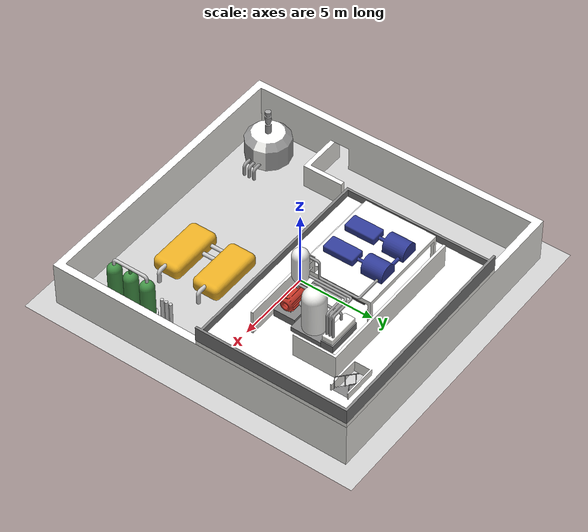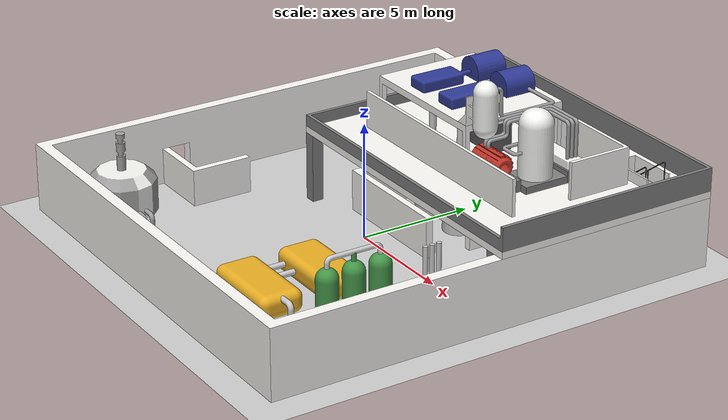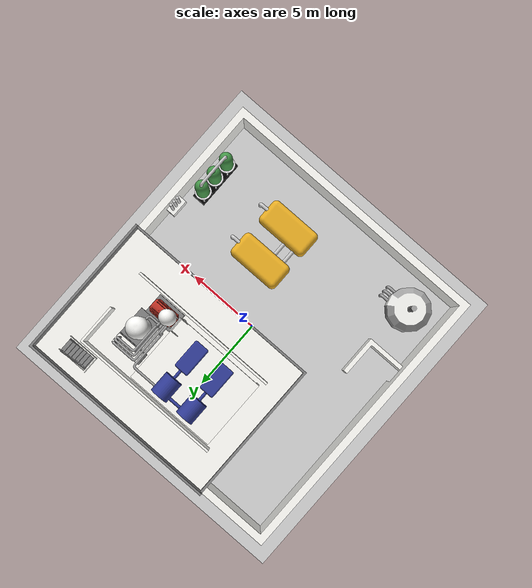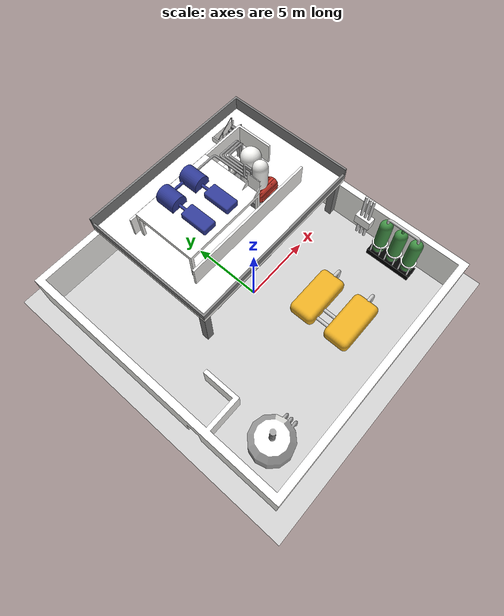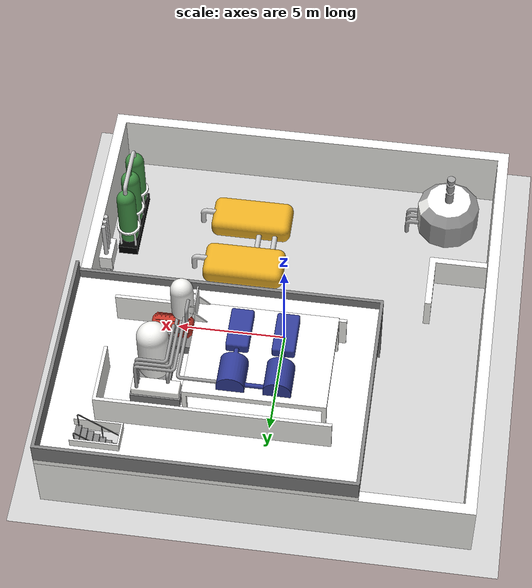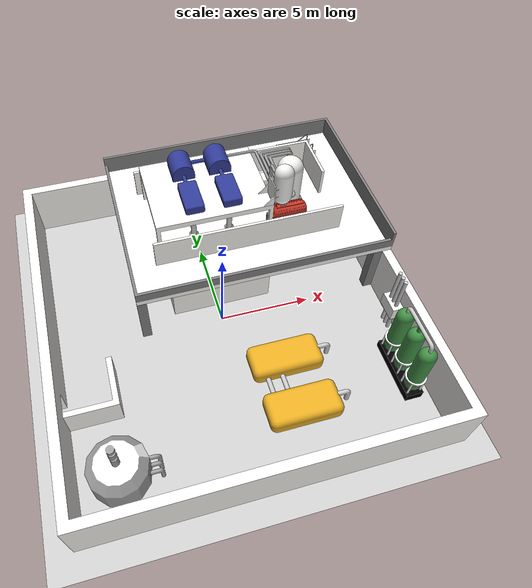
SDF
<sdf version="1.6">
 <world name="default">
  <include><uri>model://ground_plane</uri></include>
  <model name="MezzanineSupports_concrete_3">
   <static>true</static>
   <link name="link_">
    <collision name="collision_MezzanineSupports_concrete_3">
     <geometry><mesh><uri>model://reactor_room/models/MezzanineSupports_concrete_3.dae</uri></mesh></geometry>
    </collision>
    <visual name="visual_MezzanineSupports_concrete_3">
     <geometry><mesh><uri>model://reactor_room/models/MezzanineSupports_concrete_3.dae</uri></mesh></geometry>
    </visual>
   </link>
  </model>
  <model name="tankSet1_pipework_stainlessSteel_4">
   <static>true</static>
   <link name="link_">
    <collision name="collision_tankSet1_pipework_stainlessSteel_4">
     <geometry>
      <mesh><uri>model://reactor_room/models/tankSet1_pipework_stainlessSteel_4.dae</uri></mesh>
     </geometry>
    </collision>
    <visual name="visual_tankSet1_pipework_stainlessSteel_4">
     <geometry>
      <mesh><uri>model://reactor_room/models/tankSet1_pipework_stainlessSteel_4.dae</uri></mesh>
     </geometry>
    </visual>
   </link>
  </model>
  <model name="StairsHandrail_aluminium_2">
   <static>true</static>
   <link name="link_">
    <collision name="collision_StairsHandrail_aluminium_2">
     <geometry><mesh><uri>model://reactor_room/models/StairsHandrail_aluminium_2.dae</uri></mesh></geometry>
    </collision>
    <visual name="visual_StairsHandrail_aluminium_2">
     <geometry><mesh><uri>model://reactor_room/models/StairsHandrail_aluminium_2.dae</uri></mesh></geometry>
    </visual>
   </link>
  </model>
  <model name="tankSet3Support_stainlessSteel_1">
   <static>true</static>
   <link name="link_">
    <collision name="collision_tankSet3Support_stainlessSteel_1">
     <geometry><mesh><uri>model://reactor_room/models/tankSet3Support_stainlessSteel_1.dae</uri></mesh></geometry>
    </collision>
    <visual name="visual_tankSet3Support_stainlessSteel_1">
     <geometry><mesh><uri>model://reactor_room/models/tankSet3Support_stainlessSteel_1.dae</uri></mesh></geometry>
    </visual>
   </link>
  </model>
  <model name="tankSetPlinth_concrete">
   <static>true</static>
   <link name="link_">
    <collision name="collision_tankSetPlinth_concrete">
     <geometry><mesh><uri>model://reactor_room/models/tankSetPlinth_concrete.dae</uri></mesh></geometry>
    </collision>
    <visual name="visual_tankSetPlinth_concrete">
     <geometry><mesh><uri>model://reactor_room/models/tankSetPlinth_concrete.dae</uri></mesh></geometry>
    </visual>
   </link>
  </model>
  <model name="tankSet4_stainlessSteel_1">
   <static>true</static>
   <link name="link_">
    <collision name="collision_tankSet4_stainlessSteel_1">
     <geometry><mesh><uri>model://reactor_room/models/tankSet4_stainlessSteel_1.dae</uri></mesh></geometry>
    </collision>
    <visual name="visual_tankSet4_stainlessSteel_1">
     <geometry><mesh><uri>model://reactor_room/models/tankSet4_stainlessSteel_1.dae</uri></mesh></geometry>
    </visual>
   </link>
  </model>
  <model name="tankSet1_pipework_stainlessSteel_3">
   <static>true</static>
   <link name="link_">
    <collision name="collision_tankSet1_pipework_stainlessSteel_3">
     <geometry>
      <mesh><uri>model://reactor_room/models/tankSet1_pipework_stainlessSteel_3.dae</uri></mesh>
     </geometry>
    </collision>
    <visual name="visual_tankSet1_pipework_stainlessSteel_3">
     <geometry>
      <mesh><uri>model://reactor_room/models/tankSet1_pipework_stainlessSteel_3.dae</uri></mesh>
     </geometry>
    </visual>
   </link>
  </model>
  <model name="tankSet1_stainlessSteel_2">
   <static>true</static>
   <link name="link_">
    <collision name="collision_tankSet1_stainlessSteel_2">
     <geometry><mesh><uri>model://reactor_room/models/tankSet1_stainlessSteel_2.dae</uri></mesh></geometry>
    </collision>
    <visual name="visual_tankSet1_stainlessSteel_2">
     <geometry><mesh><uri>model://reactor_room/models/tankSet1_stainlessSteel_2.dae</uri></mesh></geometry>
    </visual>
   </link>
  </model>
  <model name="MezzanineSupports_concrete_2">
   <static>true</static>
   <link name="link_">
    <collision name="collision_MezzanineSupports_concrete_2">
     <geometry><mesh><uri>model://reactor_room/models/MezzanineSupports_concrete_2.dae</uri></mesh></geometry>
    </collision>
    <visual name="visual_MezzanineSupports_concrete_2">
     <geometry><mesh><uri>model://reactor_room/models/MezzanineSupports_concrete_2.dae</uri></mesh></geometry>
    </visual>
   </link>
  </model>
  <model name="tankSet3Tank_stainlessSteel_2">
   <static>true</static>
   <link name="link_">
    <collision name="collision_tankSet3Tank_stainlessSteel_2">
     <geometry><mesh><uri>model://reactor_room/models/tankSet3Tank_stainlessSteel_2.dae</uri></mesh></geometry>
    </collision>
    <visual name="visual_tankSet3Tank_stainlessSteel_2">
     <geometry><mesh><uri>model://reactor_room/models/tankSet3Tank_stainlessSteel_2.dae</uri></mesh></geometry>
    </visual>
   </link>
  </model>
  <model name="verticalPipeSet_stainlessSteel_2">
   <static>true</static>
   <link name="link_">
    <collision name="collision_verticalPipeSet_stainlessSteel_2">
     <geometry><mesh><uri>model://reactor_room/models/verticalPipeSet_stainlessSteel_2.dae</uri></mesh></geometry>
    </collision>
    <visual name="visual_verticalPipeSet_stainlessSteel_2">
     <geometry><mesh><uri>model://reactor_room/models/verticalPipeSet_stainlessSteel_2.dae</uri></mesh></geometry>
    </visual>
   </link>
  </model>
  <model name="MezzaninePipework_stainlessSteel_5">
   <static>true</static>
   <link name="link_">
    <collision name="collision_MezzaninePipework_stainlessSteel_5">
     <geometry>
      <mesh><uri>model://reactor_room/models/MezzaninePipework_stainlessSteel_5.dae</uri></mesh>
     </geometry>
    </collision>
    <visual name="visual_MezzaninePipework_stainlessSteel_5">
     <geometry>
      <mesh><uri>model://reactor_room/models/MezzaninePipework_stainlessSteel_5.dae</uri></mesh>
     </geometry>
    </visual>
   </link>
  </model>
  <model name="MezzanineTankSet1_stainlessSteel">
   <static>true</static>
   <link name="link_">
    <collision name="collision_MezzanineTankSet1_stainlessSteel">
     <geometry><mesh><uri>model://reactor_room/models/MezzanineTankSet1_stainlessSteel.dae</uri></mesh></geometry>
    </collision>
    <visual name="visual_MezzanineTankSet1_stainlessSteel">
     <geometry><mesh><uri>model://reactor_room/models/MezzanineTankSet1_stainlessSteel.dae</uri></mesh></geometry>
    </visual>
   </link>
  </model>
  <model name="MezzanineTankSet3_stainlessSteel">
   <static>true</static>
   <link name="link_">
    <collision name="collision_MezzanineTankSet3_stainlessSteel">
     <geometry><mesh><uri>model://reactor_room/models/MezzanineTankSet3_stainlessSteel.dae</uri></mesh></geometry>
    </collision>
    <visual name="visual_MezzanineTankSet3_stainlessSteel">
     <geometry><mesh><uri>model://reactor_room/models/MezzanineTankSet3_stainlessSteel.dae</uri></mesh></geometry>
    </visual>
   </link>
  </model>
  <model name="tankSet3Tank_stainlessSteel_1">
   <static>true</static>
   <link name="link_">
    <collision name="collision_tankSet3Tank_stainlessSteel_1">
     <geometry><mesh><uri>model://reactor_room/models/tankSet3Tank_stainlessSteel_1.dae</uri></mesh></geometry>
    </collision>
    <visual name="visual_tankSet3Tank_stainlessSteel_1">
     <geometry><mesh><uri>model://reactor_room/models/tankSet3Tank_stainlessSteel_1.dae</uri></mesh></geometry>
    </visual>
   </link>
  </model>
  <model name="tankSet3Support_stainlessSteel_3">
   <static>true</static>
   <link name="link_">
    <collision name="collision_tankSet3Support_stainlessSteel_3">
     <geometry><mesh><uri>model://reactor_room/models/tankSet3Support_stainlessSteel_3.dae</uri></mesh></geometry>
    </collision>
    <visual name="visual_tankSet3Support_stainlessSteel_3">
     <geometry><mesh><uri>model://reactor_room/models/tankSet3Support_stainlessSteel_3.dae</uri></mesh></geometry>
    </visual>
   </link>
  </model>
  <model name="StairsHandrail_aluminium_1">
   <static>true</static>
   <link name="link_">
    <collision name="collision_StairsHandrail_aluminium_1">
     <geometry><mesh><uri>model://reactor_room/models/StairsHandrail_aluminium_1.dae</uri></mesh></geometry>
    </collision>
    <visual name="visual_StairsHandrail_aluminium_1">
     <geometry><mesh><uri>model://reactor_room/models/StairsHandrail_aluminium_1.dae</uri></mesh></geometry>
    </visual>
   </link>
  </model>
  <model name="tankSet1_stainlessSteel_1">
   <static>true</static>
   <link name="link_">
    <collision name="collision_tankSet1_stainlessSteel_1">
     <geometry><mesh><uri>model://reactor_room/models/tankSet1_stainlessSteel_1.dae</uri></mesh></geometry>
    </collision>
    <visual name="visual_tankSet1_stainlessSteel_1">
     <geometry><mesh><uri>model://reactor_room/models/tankSet1_stainlessSteel_1.dae</uri></mesh></geometry>
    </visual>
   </link>
  </model>
  <model name="MezzanineTankSet_stainlessSteel">
   <static>true</static>
   <link name="link_">
    <collision name="collision_MezzanineTankSet_stainlessSteel">
     <geometry><mesh><uri>model://reactor_room/models/MezzanineTankSet_stainlessSteel.dae</uri></mesh></geometry>
    </collision>
    <visual name="visual_MezzanineTankSet_stainlessSteel">
     <geometry><mesh><uri>model://reactor_room/models/MezzanineTankSet_stainlessSteel.dae</uri></mesh></geometry>
    </visual>
   </link>
  </model>
  <model name="tankSet4_stainlessSteel_2">
   <static>true</static>
   <link name="link_">
    <collision name="collision_tankSet4_stainlessSteel_2">
     <geometry><mesh><uri>model://reactor_room/models/tankSet4_stainlessSteel_2.dae</uri></mesh></geometry>
    </collision>
    <visual name="visual_tankSet4_stainlessSteel_2">
     <geometry><mesh><uri>model://reactor_room/models/tankSet4_stainlessSteel_2.dae</uri></mesh></geometry>
    </visual>
   </link>
  </model>
  <model name="MezzanineTankSetPlinth_concrete">
   <static>true</static>
   <link name="link_">
    <collision name="collision_MezzanineTankSetPlinth_concrete">
     <geometry><mesh><uri>model://reactor_room/models/MezzanineTankSetPlinth_concrete.dae</uri></mesh></geometry>
    </collision>
    <visual name="visual_MezzanineTankSetPlinth_concrete">
     <geometry><mesh><uri>model://reactor_room/models/MezzanineTankSetPlinth_concrete.dae</uri></mesh></geometry>
    </visual>
   </link>
  </model>
  <model name="tankSet3Tank_stainlessSteel_3">
   <static>true</static>
   <link name="link_">
    <collision name="collision_tankSet3Tank_stainlessSteel_3">
     <geometry><mesh><uri>model://reactor_room/models/tankSet3Tank_stainlessSteel_3.dae</uri></mesh></geometry>
    </collision>
    <visual name="visual_tankSet3Tank_stainlessSteel_3">
     <geometry><mesh><uri>model://reactor_room/models/tankSet3Tank_stainlessSteel_3.dae</uri></mesh></geometry>
    </visual>
   </link>
  </model>
  <model name="tankSet2_stainlessSteel">
   <static>true</static>
   <link name="link_">
    <collision name="collision_tankSet2_stainlessSteel">
     <geometry><mesh><uri>model://reactor_room/models/tankSet2_stainlessSteel.dae</uri></mesh></geometry>
    </collision>
    <visual name="visual_tankSet2_stainlessSteel">
     <geometry><mesh><uri>model://reactor_room/models/tankSet2_stainlessSteel.dae</uri></mesh></geometry>
    </visual>
   </link>
  </model>
  <model name="tankSet3Support_stainlessSteel_2">
   <static>true</static>
   <link name="link_">
    <collision name="collision_tankSet3Support_stainlessSteel_2">
     <geometry><mesh><uri>model://reactor_room/models/tankSet3Support_stainlessSteel_2.dae</uri></mesh></geometry>
    </collision>
    <visual name="visual_tankSet3Support_stainlessSteel_2">
     <geometry><mesh><uri>model://reactor_room/models/tankSet3Support_stainlessSteel_2.dae</uri></mesh></geometry>
    </visual>
   </link>
  </model>
  <model name="verticalPipeSet_stainlessSteel_1">
   <static>true</static>
   <link name="link_">
    <collision name="collision_verticalPipeSet_stainlessSteel_1">
     <geometry><mesh><uri>model://reactor_room/models/verticalPipeSet_stainlessSteel_1.dae</uri></mesh></geometry>
    </collision>
    <visual name="visual_verticalPipeSet_stainlessSteel_1">
     <geometry><mesh><uri>model://reactor_room/models/verticalPipeSet_stainlessSteel_1.dae</uri></mesh></geometry>
    </visual>
   </link>
  </model>
  <model name="MezzanineTankSet4_stainlessSteel">
   <static>true</static>
   <link name="link_">
    <collision name="collision_MezzanineTankSet4_stainlessSteel">
     <geometry><mesh><uri>model://reactor_room/models/MezzanineTankSet4_stainlessSteel.dae</uri></mesh></geometry>
    </collision>
    <visual name="visual_MezzanineTankSet4_stainlessSteel">
     <geometry><mesh><uri>model://reactor_room/models/MezzanineTankSet4_stainlessSteel.dae</uri></mesh></geometry>
    </visual>
   </link>
  </model>
  <model name="MezzanineWalls_concrete">
   <static>true</static>
   <link name="link_">
    <collision name="collision_MezzanineWalls_concrete">
     <geometry><mesh><uri>model://reactor_room/models/MezzanineWalls_concrete.dae</uri></mesh></geometry>
    </collision>
    <visual name="visual_MezzanineWalls_concrete">
     <geometry><mesh><uri>model://reactor_room/models/MezzanineWalls_concrete.dae</uri></mesh></geometry>
    </visual>
   </link>
  </model>
  <model name="MezzanineShielding_boratedConcrete_1">
   <static>true</static>
   <link name="link_">
    <collision name="collision_MezzanineShielding_boratedConcrete_1">
     <geometry>
      <mesh><uri>model://reactor_room/models/MezzanineShielding_boratedConcrete_1.dae</uri></mesh>
     </geometry>
    </collision>
    <visual name="visual_MezzanineShielding_boratedConcrete_1">
     <geometry>
      <mesh><uri>model://reactor_room/models/MezzanineShielding_boratedConcrete_1.dae</uri></mesh>
     </geometry>
    </visual>
   </link>
  </model>
  <model name="MezzanineSupports_concrete_1">
   <static>true</static>
   <link name="link_">
    <collision name="collision_MezzanineSupports_concrete_1">
     <geometry><mesh><uri>model://reactor_room/models/MezzanineSupports_concrete_1.dae</uri></mesh></geometry>
    </collision>
    <visual name="visual_MezzanineSupports_concrete_1">
     <geometry><mesh><uri>model://reactor_room/models/MezzanineSupports_concrete_1.dae</uri></mesh></geometry>
    </visual>
   </link>
  </model>
  <model name="verticalPipeSet_stainlessSteel_3">
   <static>true</static>
   <link name="link_">
    <collision name="collision_verticalPipeSet_stainlessSteel_3">
     <geometry><mesh><uri>model://reactor_room/models/verticalPipeSet_stainlessSteel_3.dae</uri></mesh></geometry>
    </collision>
    <visual name="visual_verticalPipeSet_stainlessSteel_3">
     <geometry><mesh><uri>model://reactor_room/models/verticalPipeSet_stainlessSteel_3.dae</uri></mesh></geometry>
    </visual>
   </link>
  </model>
  <model name="tankSet1_pipework_stainlessSteel_1">
   <static>true</static>
   <link name="link_">
    <collision name="collision_tankSet1_pipework_stainlessSteel_1">
     <geometry>
      <mesh><uri>model://reactor_room/models/tankSet1_pipework_stainlessSteel_1.dae</uri></mesh>
     </geometry>
    </collision>
    <visual name="visual_tankSet1_pipework_stainlessSteel_1">
     <geometry>
      <mesh><uri>model://reactor_room/models/tankSet1_pipework_stainlessSteel_1.dae</uri></mesh>
     </geometry>
    </visual>
   </link>
  </model>
  <model name="tankSet3Pipe_stainlessSteel">
   <static>true</static>
   <link name="link_">
    <collision name="collision_tankSet3Pipe_stainlessSteel">
     <geometry><mesh><uri>model://reactor_room/models/tankSet3Pipe_stainlessSteel.dae</uri></mesh></geometry>
    </collision>
    <visual name="visual_tankSet3Pipe_stainlessSteel">
     <geometry><mesh><uri>model://reactor_room/models/tankSet3Pipe_stainlessSteel.dae</uri></mesh></geometry>
    </visual>
   </link>
  </model>
  <model name="MezzanineFloor_boratedConcrete">
   <static>true</static>
   <link name="link_">
    <collision name="collision_MezzanineFloor_boratedConcrete">
     <geometry><mesh><uri>model://reactor_room/models/MezzanineFloor_boratedConcrete.dae</uri></mesh></geometry>
    </collision>
    <visual name="visual_MezzanineFloor_boratedConcrete">
     <geometry><mesh><uri>model://reactor_room/models/MezzanineFloor_boratedConcrete.dae</uri></mesh></geometry>
    </visual>
   </link>
  </model>
  <model name="MezzanineOverhead_stainlessSteel">
   <static>true</static>
   <link name="link_">
    <collision name="collision_MezzanineOverhead_stainlessSteel">
     <geometry><mesh><uri>model://reactor_room/models/MezzanineOverhead_stainlessSteel.dae</uri></mesh></geometry>
    </collision>
    <visual name="visual_MezzanineOverhead_stainlessSteel">
     <geometry><mesh><uri>model://reactor_room/models/MezzanineOverhead_stainlessSteel.dae</uri></mesh></geometry>
    </visual>
   </link>
  </model>
  <model name="MezzaninePipework_stainlessSteel_4">
   <static>true</static>
   <link name="link_">
    <collision name="collision_MezzaninePipework_stainlessSteel_4">
     <geometry>
      <mesh><uri>model://reactor_room/models/MezzaninePipework_stainlessSteel_4.dae</uri></mesh>
     </geometry>
    </collision>
    <visual name="visual_MezzaninePipework_stainlessSteel_4">
     <geometry>
      <mesh><uri>model://reactor_room/models/MezzaninePipework_stainlessSteel_4.dae</uri></mesh>
     </geometry>
    </visual>
   </link>
  </model>
  <model name="MezzaninePipework_stainlessSteel_2">
   <static>true</static>
   <link name="link_">
    <collision name="collision_MezzaninePipework_stainlessSteel_2">
     <geometry>
      <mesh><uri>model://reactor_room/models/MezzaninePipework_stainlessSteel_2.dae</uri></mesh>
     </geometry>
    </collision>
    <visual name="visual_MezzaninePipework_stainlessSteel_2">
     <geometry>
      <mesh><uri>model://reactor_room/models/MezzaninePipework_stainlessSteel_2.dae</uri></mesh>
     </geometry>
    </visual>
   </link>
  </model>
  <model name="MezzanineOverheadTanks_stainlessSteel">
   <static>true</static>
   <link name="link_">
    <collision name="collision_MezzanineOverheadTanks_stainlessSteel">
     <geometry>
      <mesh><uri>model://reactor_room/models/MezzanineOverheadTanks_stainlessSteel.dae</uri></mesh>
     </geometry>
    </collision>
    <visual name="visual_MezzanineOverheadTanks_stainlessSteel">
     <geometry>
      <mesh><uri>model://reactor_room/models/MezzanineOverheadTanks_stainlessSteel.dae</uri></mesh>
     </geometry>
    </visual>
   </link>
  </model>
  <model name="verticalPipeSetAccess_stainlessSteel">
   <static>true</static>
   <link name="link_">
    <collision name="collision_verticalPipeSetAccess_stainlessSteel">
     <geometry>
      <mesh><uri>model://reactor_room/models/verticalPipeSetAccess_stainlessSteel.dae</uri></mesh>
     </geometry>
    </collision>
    <visual name="visual_verticalPipeSetAccess_stainlessSteel">
     <geometry>
      <mesh><uri>model://reactor_room/models/verticalPipeSetAccess_stainlessSteel.dae</uri></mesh>
     </geometry>
    </visual>
   </link>
  </model>
  <model name="MezzanineTankSet3Plinth_concrete">
   <static>true</static>
   <link name="link_">
    <collision name="collision_MezzanineTankSet3Plinth_concrete">
     <geometry><mesh><uri>model://reactor_room/models/MezzanineTankSet3Plinth_concrete.dae</uri></mesh></geometry>
    </collision>
    <visual name="visual_MezzanineTankSet3Plinth_concrete">
     <geometry><mesh><uri>model://reactor_room/models/MezzanineTankSet3Plinth_concrete.dae</uri></mesh></geometry>
    </visual>
   </link>
  </model>
  <model name="Stairs_aluminium">
   <static>true</static>
   <link name="link_">
    <collision name="collision_Stairs_aluminium">
     <geometry><mesh><uri>model://reactor_room/models/Stairs_aluminium.dae</uri></mesh></geometry>
    </collision>
    <visual name="visual_Stairs_aluminium">
     <geometry><mesh><uri>model://reactor_room/models/Stairs_aluminium.dae</uri></mesh></geometry>
    </visual>
   </link>
  </model>
  <model name="TankShielding_boratedConcrete">
   <static>true</static>
   <link name="link_">
    <collision name="collision_TankShielding_boratedConcrete">
     <geometry><mesh><uri>model://reactor_room/models/TankShielding_boratedConcrete.dae</uri></mesh></geometry>
    </collision>
    <visual name="visual_TankShielding_boratedConcrete">
     <geometry><mesh><uri>model://reactor_room/models/TankShielding_boratedConcrete.dae</uri></mesh></geometry>
    </visual>
   </link>
  </model>
  <model name="tankSet1_pipework_stainlessSteel_2">
   <static>true</static>
   <link name="link_">
    <collision name="collision_tankSet1_pipework_stainlessSteel_2">
     <geometry>
      <mesh><uri>model://reactor_room/models/tankSet1_pipework_stainlessSteel_2.dae</uri></mesh>
     </geometry>
    </collision>
    <visual name="visual_tankSet1_pipework_stainlessSteel_2">
     <geometry>
      <mesh><uri>model://reactor_room/models/tankSet1_pipework_stainlessSteel_2.dae</uri></mesh>
     </geometry>
    </visual>
   </link>
  </model>
  <model name="MezzaninePipework_stainlessSteel_1">
   <static>true</static>
   <link name="link_">
    <collision name="collision_MezzaninePipework_stainlessSteel_1">
     <geometry>
      <mesh><uri>model://reactor_room/models/MezzaninePipework_stainlessSteel_1.dae</uri></mesh>
     </geometry>
    </collision>
    <visual name="visual_MezzaninePipework_stainlessSteel_1">
     <geometry>
      <mesh><uri>model://reactor_room/models/MezzaninePipework_stainlessSteel_1.dae</uri></mesh>
     </geometry>
    </visual>
   </link>
  </model>
  <model name="MezzaninePipework_stainlessSteel_3">
   <static>true</static>
   <link name="link_">
    <collision name="collision_MezzaninePipework_stainlessSteel_3">
     <geometry>
      <mesh><uri>model://reactor_room/models/MezzaninePipework_stainlessSteel_3.dae</uri></mesh>
     </geometry>
    </collision>
    <visual name="visual_MezzaninePipework_stainlessSteel_3">
     <geometry>
      <mesh><uri>model://reactor_room/models/MezzaninePipework_stainlessSteel_3.dae</uri></mesh>
     </geometry>
    </visual>
   </link>
  </model>
  <model name="MezzanineShielding_boratedConcrete_2">
   <static>true</static>
   <link name="link_">
    <collision name="collision_MezzanineShielding_boratedConcrete_2">
     <geometry>
      <mesh><uri>model://reactor_room/models/MezzanineShielding_boratedConcrete_2.dae</uri></mesh>
     </geometry>
    </collision>
    <visual name="visual_MezzanineShielding_boratedConcrete_2">
     <geometry>
      <mesh><uri>model://reactor_room/models/MezzanineShielding_boratedConcrete_2.dae</uri></mesh>
     </geometry>
    </visual>
   </link>
  </model>
  <model name="MezzanineControlSystem_aluminium_2">
   <static>true</static>
   <link name="link_">
    <collision name="collision_MezzanineControlSystem_aluminium_2">
     <geometry>
      <mesh><uri>model://reactor_room/models/MezzanineControlSystem_aluminium_2.dae</uri></mesh>
     </geometry>
    </collision>
    <visual name="visual_MezzanineControlSystem_aluminium_2">
     <geometry>
      <mesh><uri>model://reactor_room/models/MezzanineControlSystem_aluminium_2.dae</uri></mesh>
     </geometry>
    </visual>
   </link>
  </model>
  <model name="walls_boratedConcrete">
   <static>true</static>
   <link name="link_">
    <collision name="collision_walls_boratedConcrete">
     <geometry><mesh><uri>model://reactor_room/models/walls_boratedConcrete.dae</uri></mesh></geometry>
    </collision>
    <visual name="visual_walls_boratedConcrete">
     <geometry><mesh><uri>model://reactor_room/models/walls_boratedConcrete.dae</uri></mesh></geometry>
    </visual>
   </link>
  </model>
  <model name="MezzanineTankSet4Plinth_concrete">
   <static>true</static>
   <link name="link_">
    <collision name="collision_MezzanineTankSet4Plinth_concrete">
     <geometry><mesh><uri>model://reactor_room/models/MezzanineTankSet4Plinth_concrete.dae</uri></mesh></geometry>
    </collision>
    <visual name="visual_MezzanineTankSet4Plinth_concrete">
     <geometry><mesh><uri>model://reactor_room/models/MezzanineTankSet4Plinth_concrete.dae</uri></mesh></geometry>
    </visual>
   </link>
  </model>
 </world>
</sdf>
